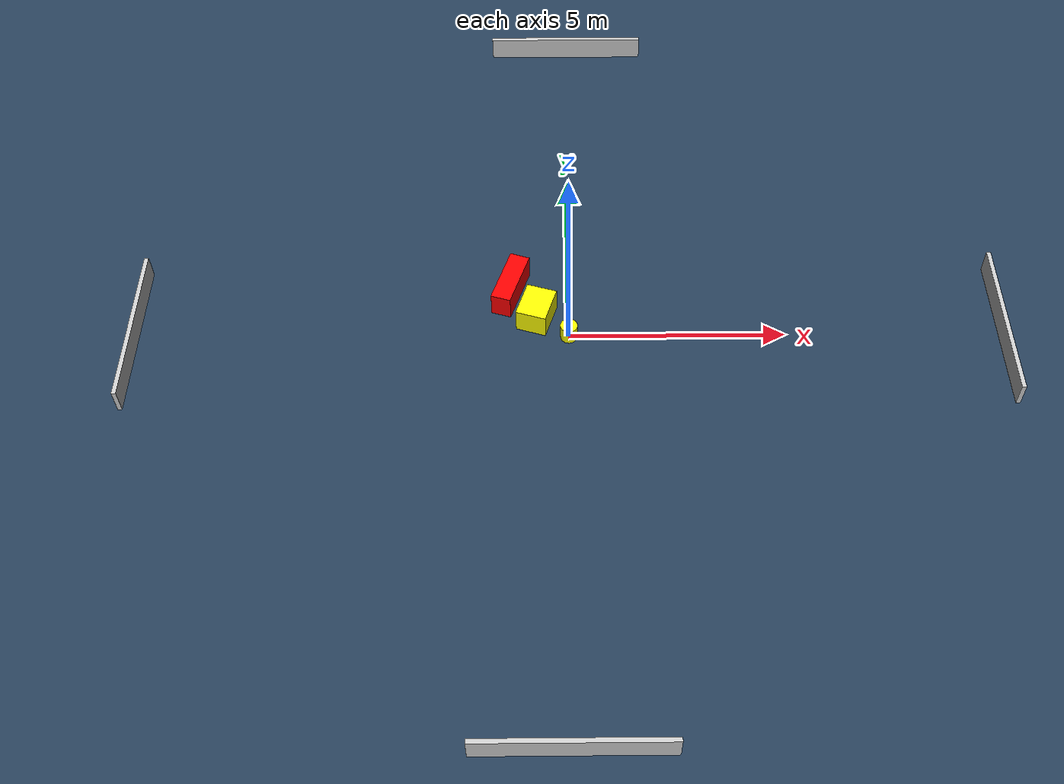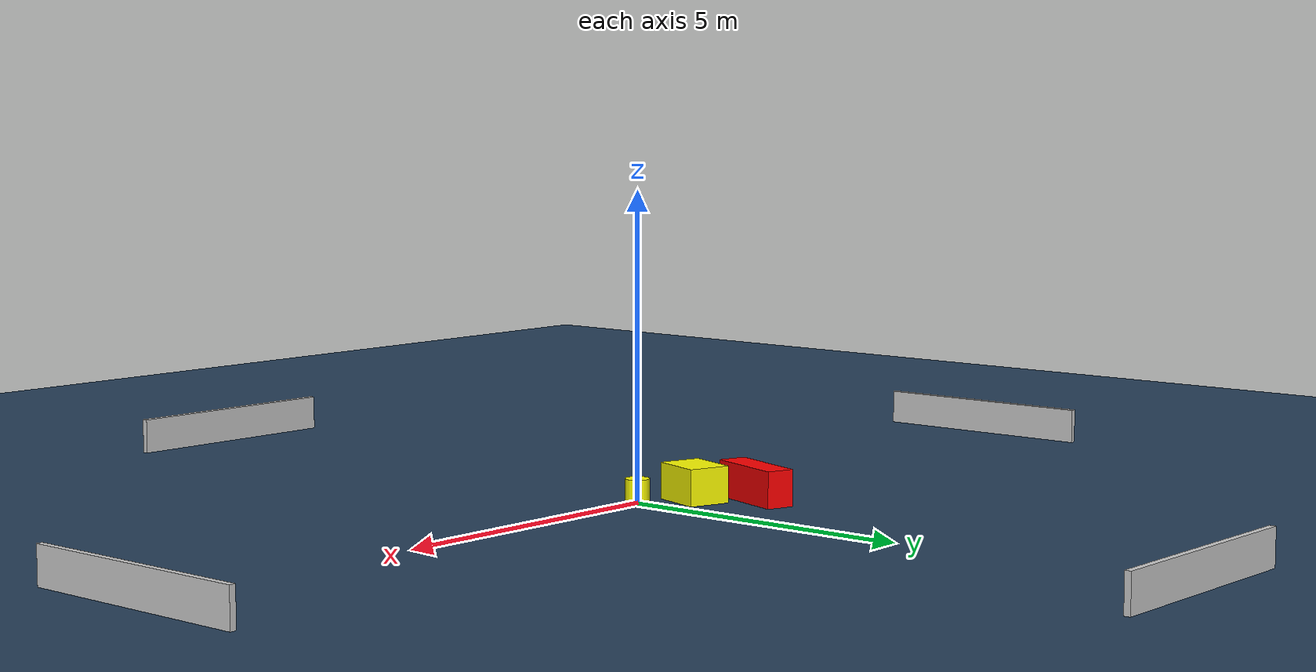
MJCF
<?xml version="1.0" ?>
<mujoco model="generated_environment">
  <option timestep="0.01" integrator="RK4" cone="elliptic"/>
  <default>
    <geom density="1"/>
  </default>
  <asset>
    <texture builtin="gradient" height="3072" name="skybox" rgb1="0.3 0.5 0.7" rgb2="0 0 0" type="skybox" width="512"/>
    <texture builtin="checker" height="300" name="groundplane" rgb1="0.2 0.3 0.4" rgb2="0.1 0.2 0.3" type="2d" width="300"/>
    <material name="groundplane" reflectance="0.2" texrepeat="5 5" texture="groundplane"/>
  </asset>
  <worldbody>
    <light dir="0 0 -1" directional="true" pos="0 0 1.5"/>
    <geom condim="3" friction="0.5 0.005 0.001" material="groundplane" name="floor" pos="0 0 0" size="0 0 0.05" type="plane"/>
    <body name="walls">
      <geom name="wall_1" condim="4" pos="-10.0 0.0 0.3" rgba="0.800000011920929 0.800000011920929 0.800000011920929 1.0" size="0.05 2.0 0.3" type="box"/>
      <geom name="wall_2" condim="4" pos="10.0 0.0 0.3" rgba="0.800000011920929 0.800000011920929 0.800000011920929 1.0" size="0.05 2.0 0.3" type="box"/>
      <geom name="wall_3" condim="4" pos="0.0 -10.0 0.3" rgba="0.800000011920929 0.800000011920929 0.800000011920929 1.0" size="2.0 0.05 0.3" type="box"/>
      <geom name="wall_4" condim="4" pos="0.0 10.0 0.3" rgba="0.800000011920929 0.800000011920929 0.800000011920929 1.0" size="2.0 0.05 0.3" type="box"/>
    </body>
    <body name="robot">
      <joint name="joint_x" type="slide" pos="0 0 0" axis="1 0 0"/>
      <joint name="joint_y" type="slide" pos="0 0 0" axis="0 1 0"/>
      <geom name="robot" type="cylinder" pos="0.0 0.0 0.2" size="0.2 0.2 0.0" mass="5.0" friction="1.0 0.005 0.0001" condim="4" rgba="1.0 1.0 0.0 1.0"/>
    </body>
    <body name="obstacle_1_movable">
      <geom name="obstacle_1_movable" condim="4" pos="-0.7514327251138602 0.5594003323858181 0.3" euler="0 0 162.66232557794206" friction="0.0 0.005 0.001" rgba="1.0 1.0 0.0 1.0" size="0.3567922751831921 0.4423996507702194 0.3" type="box" mass="0.1"/>
      <joint type="free"/>
    </body>
    <body name="obstacle_2_static">
      <geom name="obstacle_2_static" condim="4" pos="-1.3640957471725577 1.3309503242164424 0.3" euler="0 0 161.82770021866202" friction="0.0 0.005 0.001" rgba="1.0 0.0 0.0 1.0" size="0.23499373215567226 0.6982744642051278 0.3" type="box"/>
    </body>
  </worldbody>
  <actuator>
    <motor name="actuator_x" joint="joint_x" gear="1" ctrlrange="-1 1"/>
    <motor name="actuator_y" joint="joint_y" gear="1" ctrlrange="-1 1"/>
  </actuator>
</mujoco>
